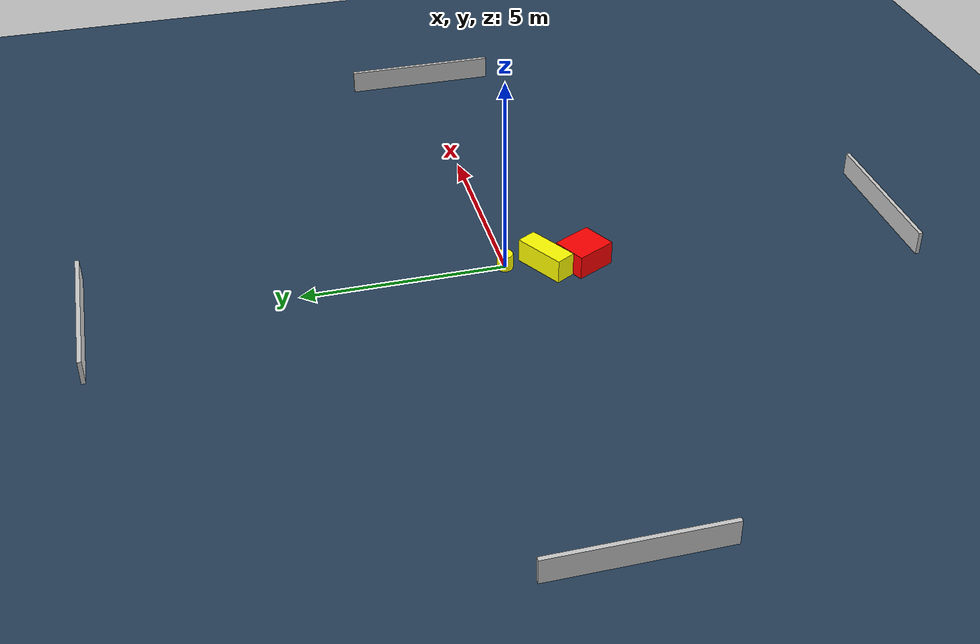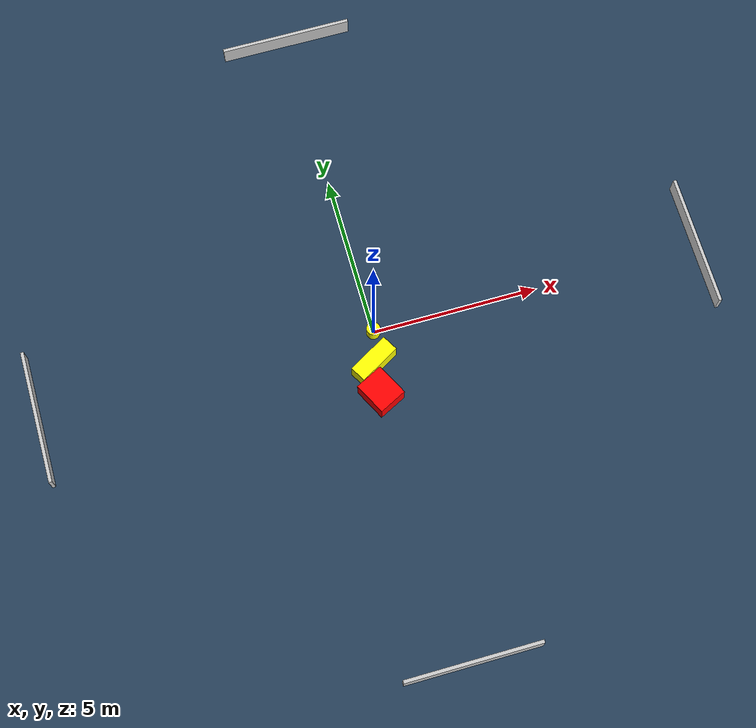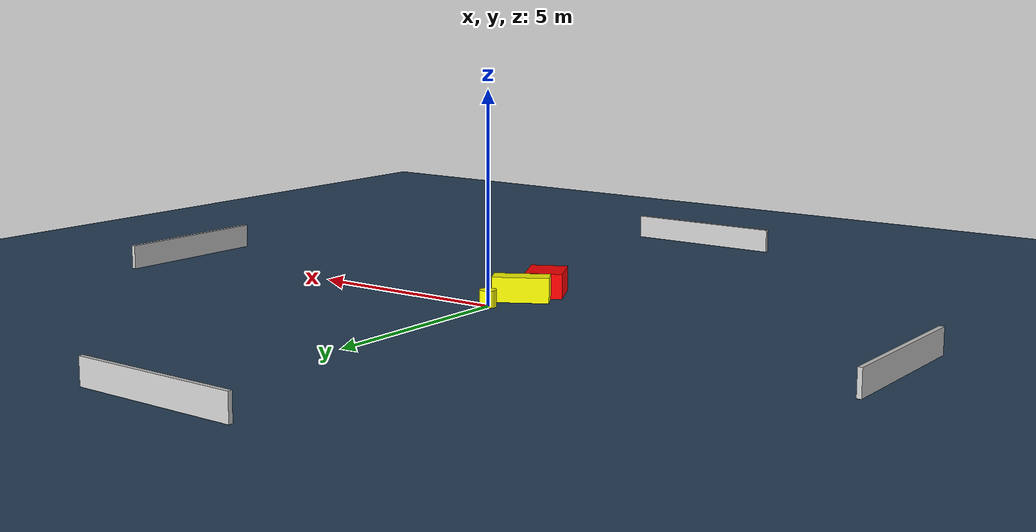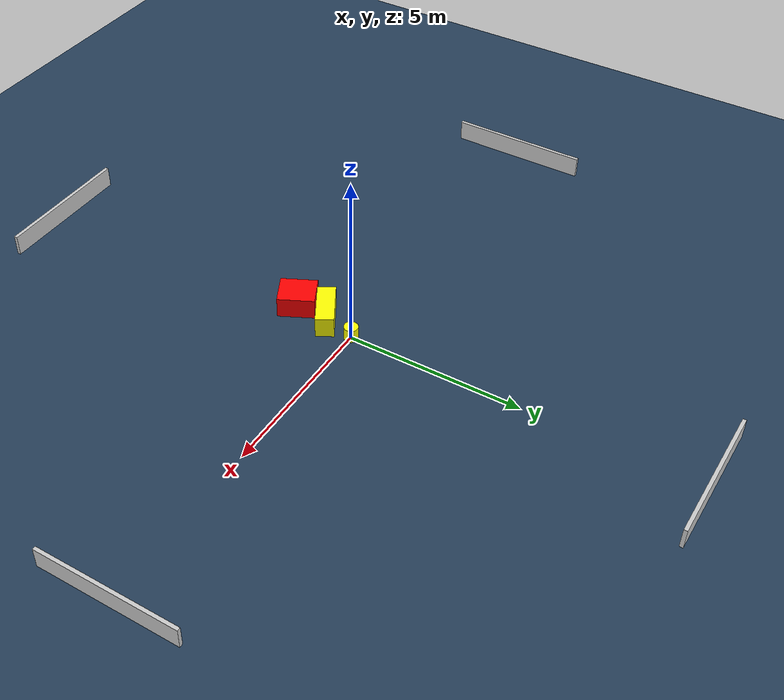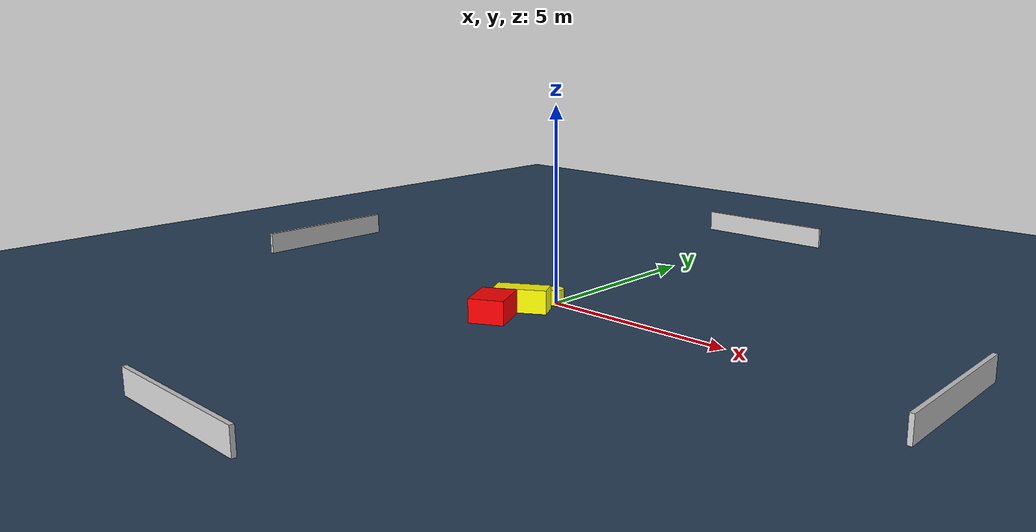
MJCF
<?xml version="1.0" ?>
<mujoco model="generated_environment">
  <option timestep="0.01" integrator="RK4" cone="elliptic"/>
  <default>
    <geom density="1"/>
  </default>
  <asset>
    <texture builtin="gradient" height="3072" name="skybox" rgb1="0.3 0.5 0.7" rgb2="0 0 0" type="skybox" width="512"/>
    <texture builtin="checker" height="300" name="groundplane" rgb1="0.2 0.3 0.4" rgb2="0.1 0.2 0.3" type="2d" width="300"/>
    <material name="groundplane" reflectance="0.2" texrepeat="5 5" texture="groundplane"/>
  </asset>
  <worldbody>
    <light dir="0 0 -1" directional="true" pos="0 0 1.5"/>
    <geom condim="3" friction="0.5 0.005 0.001" material="groundplane" name="floor" pos="0 0 0" size="0 0 0.05" type="plane"/>
    <body name="walls">
      <geom name="wall_1" condim="4" pos="-10.0 0.0 0.3" rgba="0.800000011920929 0.800000011920929 0.800000011920929 1.0" size="0.05 2.0 0.3" type="box"/>
      <geom name="wall_2" condim="4" pos="10.0 0.0 0.3" rgba="0.800000011920929 0.800000011920929 0.800000011920929 1.0" size="0.05 2.0 0.3" type="box"/>
      <geom name="wall_3" condim="4" pos="0.0 -10.0 0.3" rgba="0.800000011920929 0.800000011920929 0.800000011920929 1.0" size="2.0 0.05 0.3" type="box"/>
      <geom name="wall_4" condim="4" pos="0.0 10.0 0.3" rgba="0.800000011920929 0.800000011920929 0.800000011920929 1.0" size="2.0 0.05 0.3" type="box"/>
    </body>
    <body name="robot">
      <joint name="joint_x" type="slide" pos="0 0 0" axis="1 0 0"/>
      <joint name="joint_y" type="slide" pos="0 0 0" axis="0 1 0"/>
      <geom name="robot" type="cylinder" pos="0.0 0.0 0.2" size="0.2 0.2 0.0" mass="5.0" friction="1.0 0.005 0.0001" condim="4" rgba="1.0 1.0 0.0 1.0"/>
    </body>
    <body name="obstacle_1_movable">
      <geom name="obstacle_1_movable" condim="4" pos="-0.25154909964442873 -0.9603517572530187 0.3" euler="0 0 29.943959341604277" friction="0.0 0.005 0.001" rgba="1.0 1.0 0.0 1.0" size="0.6700725206463232 0.2554908113879757 0.3" type="box" mass="0.1"/>
      <joint type="free"/>
    </body>
    <body name="obstacle_2_static">
      <geom name="obstacle_2_static" condim="4" pos="-0.3108282678428193 -1.9028465439635285 0.3" euler="0 0 206.879846205569" friction="0.0 0.005 0.001" rgba="1.0 0.0 0.0 1.0" size="0.4444744492383254 0.5157404395608935 0.3" type="box"/>
    </body>
  </worldbody>
  <actuator>
    <motor name="actuator_x" joint="joint_x" gear="1" ctrlrange="-1 1"/>
    <motor name="actuator_y" joint="joint_y" gear="1" ctrlrange="-1 1"/>
  </actuator>
</mujoco>
